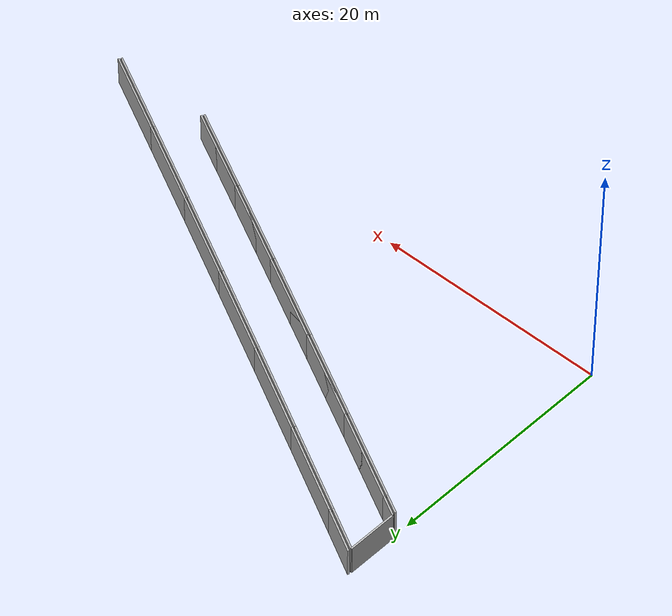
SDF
<?xml version="1.0" ?>
<sdf version="1.6">
  <model name="sps_0012">
    <pose frame="">0 0 0 0 -0 0</pose>
    <static>1</static>
    <self_collide>0</self_collide>
    <allow_auto_disable>0</allow_auto_disable>
    <link name="Wall4283">
      <kinematic>0</kinematic>
      <gravity>1</gravity>
      <self_collide>0</self_collide>
      <collision name="collision">
        <geometry>
          <box>
            <size>4.25247 0.15 2.5</size>
          </box>
        </geometry>
        <pose frame="">0 0 0 0 -0 0</pose>
      </collision>
      <visual name="visual">
        <geometry>
          <box>
            <size>4.25247 0.15 2.5</size>
          </box>
        </geometry>
        <pose frame="">0 0 0 0 -0 0</pose>
        <cast_shadows>1</cast_shadows>
        <transparency>0.0</transparency>
      </visual>
      <pose frame="">0 23.6501 1.25 0 -0 1.5708</pose>
    </link>
    <link name="Wall4284">
      <kinematic>0</kinematic>
      <gravity>1</gravity>
      <self_collide>0</self_collide>
      <collision name="collision">
        <geometry>
          <box>
            <size>3.90759 0.15 2.5</size>
          </box>
        </geometry>
        <pose frame="">0 0 0 0 -0 0</pose>
      </collision>
      <visual name="visual">
        <geometry>
          <box>
            <size>3.90759 0.15 2.5</size>
          </box>
        </geometry>
        <pose frame="">0 0 0 0 -0 0</pose>
        <cast_shadows>1</cast_shadows>
        <transparency>0.0</transparency>
      </visual>
      <pose frame="">1.72703 24.8627 1.25 0 0 -0.486583</pose>
    </link>
    <link name="Wall4285">
      <kinematic>0</kinematic>
      <gravity>1</gravity>
      <self_collide>0</self_collide>
      <collision name="collision">
        <geometry>
          <box>
            <size>8.25159 0.15 2.5</size>
          </box>
        </geometry>
        <pose frame="">0 0 0 0 -0 0</pose>
      </collision>
      <visual name="visual">
        <geometry>
          <box>
            <size>8.25159 0.15 2.5</size>
          </box>
        </geometry>
        <pose frame="">0 0 0 0 -0 0</pose>
        <cast_shadows>1</cast_shadows>
        <transparency>0.0</transparency>
      </visual>
      <pose frame="">7.10555 22.0285 1.25 0 0 -0.484218</pose>
    </link>
    <link name="Wall4286">
      <kinematic>0</kinematic>
      <gravity>1</gravity>
      <self_collide>0</self_collide>
      <collision name="collision">
        <geometry>
          <box>
            <size>8.25156 0.15 2.5</size>
          </box>
        </geometry>
        <pose frame="">0 0 0 0 -0 0</pose>
      </collision>
      <visual name="visual">
        <geometry>
          <box>
            <size>8.25156 0.15 2.5</size>
          </box>
        </geometry>
        <pose frame="">0 0 0 0 -0 0</pose>
        <cast_shadows>1</cast_shadows>
        <transparency>0.0</transparency>
      </visual>
      <pose frame="">14.413 18.1959 1.25 0 0 -0.481856</pose>
    </link>
    <link name="Wall4287">
      <kinematic>0</kinematic>
      <gravity>1</gravity>
      <self_collide>0</self_collide>
      <collision name="collision">
        <geometry>
          <box>
            <size>8.25181 0.15 2.5</size>
          </box>
        </geometry>
        <pose frame="">0 0 0 0 -0 0</pose>
      </collision>
      <visual name="visual">
        <geometry>
          <box>
            <size>8.25181 0.15 2.5</size>
          </box>
        </geometry>
        <pose frame="">0 0 0 0 -0 0</pose>
        <cast_shadows>1</cast_shadows>
        <transparency>0.0</transparency>
      </visual>
      <pose frame="">21.7297 14.3805 1.25 0 0 -0.479496</pose>
    </link>
    <link name="Wall4288">
      <kinematic>0</kinematic>
      <gravity>1</gravity>
      <self_collide>0</self_collide>
      <collision name="collision">
        <geometry>
          <box>
            <size>8.25143 0.15 2.5</size>
          </box>
        </geometry>
        <pose frame="">0 0 0 0 -0 0</pose>
      </collision>
      <visual name="visual">
        <geometry>
          <box>
            <size>8.25143 0.15 2.5</size>
          </box>
        </geometry>
        <pose frame="">0 0 0 0 -0 0</pose>
        <cast_shadows>1</cast_shadows>
        <transparency>0.0</transparency>
      </visual>
      <pose frame="">29.0553 10.5825 1.25 0 0 -0.477112</pose>
    </link>
    <link name="Wall4289">
      <kinematic>0</kinematic>
      <gravity>1</gravity>
      <self_collide>0</self_collide>
      <collision name="collision">
        <geometry>
          <box>
            <size>8.25158 0.15 2.5</size>
          </box>
        </geometry>
        <pose frame="">0 0 0 0 -0 0</pose>
      </collision>
      <visual name="visual">
        <geometry>
          <box>
            <size>8.25158 0.15 2.5</size>
          </box>
        </geometry>
        <pose frame="">0 0 0 0 -0 0</pose>
        <cast_shadows>1</cast_shadows>
        <transparency>0.0</transparency>
      </visual>
      <pose frame="">36.3897 6.80189 1.25 0 0 -0.474756</pose>
    </link>
    <link name="Wall4290">
      <kinematic>0</kinematic>
      <gravity>1</gravity>
      <self_collide>0</self_collide>
      <collision name="collision">
        <geometry>
          <box>
            <size>8.25171 0.15 2.5</size>
          </box>
        </geometry>
        <pose frame="">0 0 0 0 -0 0</pose>
      </collision>
      <visual name="visual">
        <geometry>
          <box>
            <size>8.25171 0.15 2.5</size>
          </box>
        </geometry>
        <pose frame="">0 0 0 0 -0 0</pose>
        <cast_shadows>1</cast_shadows>
        <transparency>0.0</transparency>
      </visual>
      <pose frame="">43.7332 3.03859 1.25 0 0 -0.472387</pose>
    </link>
    <link name="Wall4353">
      <kinematic>0</kinematic>
      <gravity>1</gravity>
      <self_collide>0</self_collide>
      <collision name="collision">
        <geometry>
          <box>
            <size>8.26111 0.15 2.5</size>
          </box>
        </geometry>
        <pose frame="">0 0 0 0 -0 0</pose>
      </collision>
      <visual name="visual">
        <geometry>
          <box>
            <size>8.26111 0.15 2.5</size>
          </box>
        </geometry>
        <pose frame="">0 0 0 0 -0 0</pose>
        <cast_shadows>1</cast_shadows>
        <transparency>0.0</transparency>
      </visual>
      <pose frame="">34.6303 3.4799 1.25 0 -0 2.66682</pose>
    </link>
    <link name="Wall4354">
      <kinematic>0</kinematic>
      <gravity>1</gravity>
      <self_collide>0</self_collide>
      <collision name="collision">
        <geometry>
          <box>
            <size>8.26102 0.15 2.5</size>
          </box>
        </geometry>
        <pose frame="">0 0 0 0 -0 0</pose>
      </collision>
      <visual name="visual">
        <geometry>
          <box>
            <size>8.26102 0.15 2.5</size>
          </box>
        </geometry>
        <pose frame="">0 0 0 0 -0 0</pose>
        <cast_shadows>1</cast_shadows>
        <transparency>0.0</transparency>
      </visual>
      <pose frame="">27.2874 7.265 1.25 0 -0 2.66446</pose>
    </link>
    <link name="Wall4355">
      <kinematic>0</kinematic>
      <gravity>1</gravity>
      <self_collide>0</self_collide>
      <collision name="collision">
        <geometry>
          <box>
            <size>8.261 0.15 2.5</size>
          </box>
        </geometry>
        <pose frame="">0 0 0 0 -0 0</pose>
      </collision>
      <visual name="visual">
        <geometry>
          <box>
            <size>8.261 0.15 2.5</size>
          </box>
        </geometry>
        <pose frame="">0 0 0 0 -0 0</pose>
        <cast_shadows>1</cast_shadows>
        <transparency>0.0</transparency>
      </visual>
      <pose frame="">19.9535 11.0674 1.25 0 -0 2.6621</pose>
    </link>
    <link name="Wall4356">
      <kinematic>0</kinematic>
      <gravity>1</gravity>
      <self_collide>0</self_collide>
      <collision name="collision">
        <geometry>
          <box>
            <size>8.26085 0.15 2.5</size>
          </box>
        </geometry>
        <pose frame="">0 0 0 0 -0 0</pose>
      </collision>
      <visual name="visual">
        <geometry>
          <box>
            <size>8.26085 0.15 2.5</size>
          </box>
        </geometry>
        <pose frame="">0 0 0 0 -0 0</pose>
        <cast_shadows>1</cast_shadows>
        <transparency>0.0</transparency>
      </visual>
      <pose frame="">12.6287 14.8871 1.25 0 -0 2.65972</pose>
    </link>
    <link name="Wall4357">
      <kinematic>0</kinematic>
      <gravity>1</gravity>
      <self_collide>0</self_collide>
      <collision name="collision">
        <geometry>
          <box>
            <size>8.26117 0.15 2.5</size>
          </box>
        </geometry>
        <pose frame="">0 0 0 0 -0 0</pose>
      </collision>
      <visual name="visual">
        <geometry>
          <box>
            <size>8.26117 0.15 2.5</size>
          </box>
        </geometry>
        <pose frame="">0 0 0 0 -0 0</pose>
        <cast_shadows>1</cast_shadows>
        <transparency>0.0</transparency>
      </visual>
      <pose frame="">5.31295 18.7242 1.25 0 -0 2.65736</pose>
    </link>
    <link name="Wall18031">
      <kinematic>0</kinematic>
      <gravity>1</gravity>
      <self_collide>0</self_collide>
      <collision name="collision">
        <geometry>
          <box>
            <size>4.04263 0.15 2.5</size>
          </box>
        </geometry>
        <pose frame="">0 0 0 0 -0 0</pose>
      </collision>
      <visual name="visual">
        <geometry>
          <box>
            <size>4.04263 0.15 2.5</size>
          </box>
        </geometry>
        <pose frame="">0 0 0 0 -0 0</pose>
        <cast_shadows>1</cast_shadows>
        <transparency>0.0</transparency>
      </visual>
      <pose frame="">1.78672 25.1139 1.25 0 0 -0.486572</pose>
    </link>
    <link name="Wall18032">
      <kinematic>0</kinematic>
      <gravity>1</gravity>
      <self_collide>0</self_collide>
      <collision name="collision">
        <geometry>
          <box>
            <size>8.25106 0.15 2.5</size>
          </box>
        </geometry>
        <pose frame="">0 0 0 0 -0 0</pose>
      </collision>
      <visual name="visual">
        <geometry>
          <box>
            <size>8.25106 0.15 2.5</size>
          </box>
        </geometry>
        <pose frame="">0 0 0 0 -0 0</pose>
        <cast_shadows>1</cast_shadows>
        <transparency>0.0</transparency>
      </visual>
      <pose frame="">7.22475 22.2483 1.25 0 0 -0.484193</pose>
    </link>
    <link name="Wall18033">
      <kinematic>0</kinematic>
      <gravity>1</gravity>
      <self_collide>0</self_collide>
      <collision name="collision">
        <geometry>
          <box>
            <size>8.25085 0.15 2.5</size>
          </box>
        </geometry>
        <pose frame="">0 0 0 0 -0 0</pose>
      </collision>
      <visual name="visual">
        <geometry>
          <box>
            <size>8.25085 0.15 2.5</size>
          </box>
        </geometry>
        <pose frame="">0 0 0 0 -0 0</pose>
        <cast_shadows>1</cast_shadows>
        <transparency>0.0</transparency>
      </visual>
      <pose frame="">14.5318 18.4161 1.25 0 0 -0.481851</pose>
    </link>
    <link name="Wall18034">
      <kinematic>0</kinematic>
      <gravity>1</gravity>
      <self_collide>0</self_collide>
      <collision name="collision">
        <geometry>
          <box>
            <size>8.25107 0.15 2.5</size>
          </box>
        </geometry>
        <pose frame="">0 0 0 0 -0 0</pose>
      </collision>
      <visual name="visual">
        <geometry>
          <box>
            <size>8.25107 0.15 2.5</size>
          </box>
        </geometry>
        <pose frame="">0 0 0 0 -0 0</pose>
        <cast_shadows>1</cast_shadows>
        <transparency>0.0</transparency>
      </visual>
      <pose frame="">21.8478 14.6011 1.25 0 0 -0.479484</pose>
    </link>
    <link name="Wall18035">
      <kinematic>0</kinematic>
      <gravity>1</gravity>
      <self_collide>0</self_collide>
      <collision name="collision">
        <geometry>
          <box>
            <size>8.25095 0.15 2.5</size>
          </box>
        </geometry>
        <pose frame="">0 0 0 0 -0 0</pose>
      </collision>
      <visual name="visual">
        <geometry>
          <box>
            <size>8.25095 0.15 2.5</size>
          </box>
        </geometry>
        <pose frame="">0 0 0 0 -0 0</pose>
        <cast_shadows>1</cast_shadows>
        <transparency>0.0</transparency>
      </visual>
      <pose frame="">29.1728 10.8033 1.25 0 0 -0.477142</pose>
    </link>
    <link name="Wall18036">
      <kinematic>0</kinematic>
      <gravity>1</gravity>
      <self_collide>0</self_collide>
      <collision name="collision">
        <geometry>
          <box>
            <size>8.25103 0.15 2.5</size>
          </box>
        </geometry>
        <pose frame="">0 0 0 0 -0 0</pose>
      </collision>
      <visual name="visual">
        <geometry>
          <box>
            <size>8.25103 0.15 2.5</size>
          </box>
        </geometry>
        <pose frame="">0 0 0 0 -0 0</pose>
        <cast_shadows>1</cast_shadows>
        <transparency>0.0</transparency>
      </visual>
      <pose frame="">36.5068 7.0229 1.25 0 0 -0.47474</pose>
    </link>
    <link name="Wall18037">
      <kinematic>0</kinematic>
      <gravity>1</gravity>
      <self_collide>0</self_collide>
      <collision name="collision">
        <geometry>
          <box>
            <size>8.25106 0.15 2.5</size>
          </box>
        </geometry>
        <pose frame="">0 0 0 0 -0 0</pose>
      </collision>
      <visual name="visual">
        <geometry>
          <box>
            <size>8.25106 0.15 2.5</size>
          </box>
        </geometry>
        <pose frame="">0 0 0 0 -0 0</pose>
        <cast_shadows>1</cast_shadows>
        <transparency>0.0</transparency>
      </visual>
      <pose frame="">43.8498 3.2599 1.25 0 0 -0.472394</pose>
    </link>
    <link name="Wall37619">
      <kinematic>0</kinematic>
      <gravity>1</gravity>
      <self_collide>0</self_collide>
      <collision name="collision">
        <geometry>
          <box>
            <size>3.90759 0.15 2.5</size>
          </box>
        </geometry>
        <pose frame="">0 0 0 0 -0 0</pose>
      </collision>
      <visual name="visual">
        <geometry>
          <box>
            <size>3.90759 0.15 2.5</size>
          </box>
        </geometry>
        <pose frame="">0 0 0 0 -0 0</pose>
        <cast_shadows>1</cast_shadows>
        <transparency>0.0</transparency>
      </visual>
      <pose frame="">1.72703 24.8627 1.25 0 0 -0.486583</pose>
    </link>
    <link name="Wall37620">
      <kinematic>0</kinematic>
      <gravity>1</gravity>
      <self_collide>0</self_collide>
      <collision name="collision">
        <geometry>
          <box>
            <size>8.25159 0.15 2.5</size>
          </box>
        </geometry>
        <pose frame="">0 0 0 0 -0 0</pose>
      </collision>
      <visual name="visual">
        <geometry>
          <box>
            <size>8.25159 0.15 2.5</size>
          </box>
        </geometry>
        <pose frame="">0 0 0 0 -0 0</pose>
        <cast_shadows>1</cast_shadows>
        <transparency>0.0</transparency>
      </visual>
      <pose frame="">7.10555 22.0285 1.25 0 0 -0.484218</pose>
    </link>
    <link name="Wall37621">
      <kinematic>0</kinematic>
      <gravity>1</gravity>
      <self_collide>0</self_collide>
      <collision name="collision">
        <geometry>
          <box>
            <size>8.25156 0.15 2.5</size>
          </box>
        </geometry>
        <pose frame="">0 0 0 0 -0 0</pose>
      </collision>
      <visual name="visual">
        <geometry>
          <box>
            <size>8.25156 0.15 2.5</size>
          </box>
        </geometry>
        <pose frame="">0 0 0 0 -0 0</pose>
        <cast_shadows>1</cast_shadows>
        <transparency>0.0</transparency>
      </visual>
      <pose frame="">14.413 18.1959 1.25 0 0 -0.481856</pose>
    </link>
    <link name="Wall37622">
      <kinematic>0</kinematic>
      <gravity>1</gravity>
      <self_collide>0</self_collide>
      <collision name="collision">
        <geometry>
          <box>
            <size>8.25181 0.15 2.5</size>
          </box>
        </geometry>
        <pose frame="">0 0 0 0 -0 0</pose>
      </collision>
      <visual name="visual">
        <geometry>
          <box>
            <size>8.25181 0.15 2.5</size>
          </box>
        </geometry>
        <pose frame="">0 0 0 0 -0 0</pose>
        <cast_shadows>1</cast_shadows>
        <transparency>0.0</transparency>
      </visual>
      <pose frame="">21.7297 14.3805 1.25 0 0 -0.479496</pose>
    </link>
    <link name="Wall37623">
      <kinematic>0</kinematic>
      <gravity>1</gravity>
      <self_collide>0</self_collide>
      <collision name="collision">
        <geometry>
          <box>
            <size>8.25143 0.15 2.5</size>
          </box>
        </geometry>
        <pose frame="">0 0 0 0 -0 0</pose>
      </collision>
      <visual name="visual">
        <geometry>
          <box>
            <size>8.25143 0.15 2.5</size>
          </box>
        </geometry>
        <pose frame="">0 0 0 0 -0 0</pose>
        <cast_shadows>1</cast_shadows>
        <transparency>0.0</transparency>
      </visual>
      <pose frame="">29.0553 10.5825 1.25 0 0 -0.477112</pose>
    </link>
    <link name="Wall37624">
      <kinematic>0</kinematic>
      <gravity>1</gravity>
      <self_collide>0</self_collide>
      <collision name="collision">
        <geometry>
          <box>
            <size>8.25158 0.15 2.5</size>
          </box>
        </geometry>
        <pose frame="">0 0 0 0 -0 0</pose>
      </collision>
      <visual name="visual">
        <geometry>
          <box>
            <size>8.25158 0.15 2.5</size>
          </box>
        </geometry>
        <pose frame="">0 0 0 0 -0 0</pose>
        <cast_shadows>1</cast_shadows>
        <transparency>0.0</transparency>
      </visual>
      <pose frame="">36.3897 6.80189 1.25 0 0 -0.474756</pose>
    </link>
    <link name="Wall37625">
      <kinematic>0</kinematic>
      <gravity>1</gravity>
      <self_collide>0</self_collide>
      <collision name="collision">
        <geometry>
          <box>
            <size>8.25171 0.15 2.5</size>
          </box>
        </geometry>
        <pose frame="">0 0 0 0 -0 0</pose>
      </collision>
      <visual name="visual">
        <geometry>
          <box>
            <size>8.25171 0.15 2.5</size>
          </box>
        </geometry>
        <pose frame="">0 0 0 0 -0 0</pose>
        <cast_shadows>1</cast_shadows>
        <transparency>0.0</transparency>
      </visual>
      <pose frame="">43.7332 3.03859 1.25 0 0 -0.472387</pose>
    </link>
    <link name="Wall37839">
      <kinematic>0</kinematic>
      <gravity>1</gravity>
      <self_collide>0</self_collide>
      <collision name="collision">
        <geometry>
          <box>
            <size>1.73959 0.15 2.5</size>
          </box>
        </geometry>
        <pose frame="">0 0 0 0 -0 0</pose>
      </collision>
      <visual name="visual">
        <geometry>
          <box>
            <size>1.73959 0.15 2.5</size>
          </box>
        </geometry>
        <pose frame="">0 0 0 0 -0 0</pose>
        <cast_shadows>1</cast_shadows>
        <transparency>0.0</transparency>
      </visual>
      <pose frame="">0.76884 20.8346 1.25 0 0 -0.486592</pose>
    </link>
    <link name="Wall37840">
      <kinematic>0</kinematic>
      <gravity>1</gravity>
      <self_collide>0</self_collide>
      <collision name="collision">
        <geometry>
          <box>
            <size>8.26183 0.15 2.5</size>
          </box>
        </geometry>
        <pose frame="">0 0 0 0 -0 0</pose>
      </collision>
      <visual name="visual">
        <geometry>
          <box>
            <size>8.26183 0.15 2.5</size>
          </box>
        </geometry>
        <pose frame="">0 0 0 0 -0 0</pose>
        <cast_shadows>1</cast_shadows>
        <transparency>0.0</transparency>
      </visual>
      <pose frame="">5.19366 18.5048 1.25 0 0 -0.484242</pose>
    </link>
    <link name="Wall37841">
      <kinematic>0</kinematic>
      <gravity>1</gravity>
      <self_collide>0</self_collide>
      <collision name="collision">
        <geometry>
          <box>
            <size>8.26159 0.15 2.5</size>
          </box>
        </geometry>
        <pose frame="">0 0 0 0 -0 0</pose>
      </collision>
      <visual name="visual">
        <geometry>
          <box>
            <size>8.26159 0.15 2.5</size>
          </box>
        </geometry>
        <pose frame="">0 0 0 0 -0 0</pose>
        <cast_shadows>1</cast_shadows>
        <transparency>0.0</transparency>
      </visual>
      <pose frame="">12.51 14.6673 1.25 0 0 -0.48188</pose>
    </link>
    <link name="Wall37842">
      <kinematic>0</kinematic>
      <gravity>1</gravity>
      <self_collide>0</self_collide>
      <collision name="collision">
        <geometry>
          <box>
            <size>8.26171 0.15 2.5</size>
          </box>
        </geometry>
        <pose frame="">0 0 0 0 -0 0</pose>
      </collision>
      <visual name="visual">
        <geometry>
          <box>
            <size>8.26171 0.15 2.5</size>
          </box>
        </geometry>
        <pose frame="">0 0 0 0 -0 0</pose>
        <cast_shadows>1</cast_shadows>
        <transparency>0.0</transparency>
      </visual>
      <pose frame="">19.8354 10.8472 1.25 0 0 -0.479497</pose>
    </link>
    <link name="Wall37843">
      <kinematic>0</kinematic>
      <gravity>1</gravity>
      <self_collide>0</self_collide>
      <collision name="collision">
        <geometry>
          <box>
            <size>8.26176 0.15 2.5</size>
          </box>
        </geometry>
        <pose frame="">0 0 0 0 -0 0</pose>
      </collision>
      <visual name="visual">
        <geometry>
          <box>
            <size>8.26176 0.15 2.5</size>
          </box>
        </geometry>
        <pose frame="">0 0 0 0 -0 0</pose>
        <cast_shadows>1</cast_shadows>
        <transparency>0.0</transparency>
      </visual>
      <pose frame="">27.1699 7.04439 1.25 0 0 -0.477148</pose>
    </link>
    <link name="Wall37844">
      <kinematic>0</kinematic>
      <gravity>1</gravity>
      <self_collide>0</self_collide>
      <collision name="collision">
        <geometry>
          <box>
            <size>8.26173 0.15 2.5</size>
          </box>
        </geometry>
        <pose frame="">0 0 0 0 -0 0</pose>
      </collision>
      <visual name="visual">
        <geometry>
          <box>
            <size>8.26173 0.15 2.5</size>
          </box>
        </geometry>
        <pose frame="">0 0 0 0 -0 0</pose>
        <cast_shadows>1</cast_shadows>
        <transparency>0.0</transparency>
      </visual>
      <pose frame="">34.5134 3.25899 1.25 0 0 -0.474755</pose>
    </link>
    <link name="Wall37922">
      <kinematic>0</kinematic>
      <gravity>1</gravity>
      <self_collide>0</self_collide>
      <collision name="collision">
        <geometry>
          <box>
            <size>1.87488 0.15 2.5</size>
          </box>
        </geometry>
        <pose frame="">0 0 0 0 -0 0</pose>
      </collision>
      <visual name="visual">
        <geometry>
          <box>
            <size>1.87488 0.15 2.5</size>
          </box>
        </geometry>
        <pose frame="">0 0 0 0 -0 0</pose>
        <cast_shadows>1</cast_shadows>
        <transparency>0.0</transparency>
      </visual>
      <pose frame="">0.828624 21.0855 1.25 0 0 -0.48661</pose>
    </link>
    <link name="Wall37923">
      <kinematic>0</kinematic>
      <gravity>1</gravity>
      <self_collide>0</self_collide>
      <collision name="collision">
        <geometry>
          <box>
            <size>8.26117 0.15 2.5</size>
          </box>
        </geometry>
        <pose frame="">0 0 0 0 -0 0</pose>
      </collision>
      <visual name="visual">
        <geometry>
          <box>
            <size>8.26117 0.15 2.5</size>
          </box>
        </geometry>
        <pose frame="">0 0 0 0 -0 0</pose>
        <cast_shadows>1</cast_shadows>
        <transparency>0.0</transparency>
      </visual>
      <pose frame="">5.31295 18.7242 1.25 0 0 -0.484234</pose>
    </link>
    <link name="Wall37924">
      <kinematic>0</kinematic>
      <gravity>1</gravity>
      <self_collide>0</self_collide>
      <collision name="collision">
        <geometry>
          <box>
            <size>8.26085 0.15 2.5</size>
          </box>
        </geometry>
        <pose frame="">0 0 0 0 -0 0</pose>
      </collision>
      <visual name="visual">
        <geometry>
          <box>
            <size>8.26085 0.15 2.5</size>
          </box>
        </geometry>
        <pose frame="">0 0 0 0 -0 0</pose>
        <cast_shadows>1</cast_shadows>
        <transparency>0.0</transparency>
      </visual>
      <pose frame="">12.6287 14.8871 1.25 0 0 -0.481868</pose>
    </link>
    <link name="Wall37925">
      <kinematic>0</kinematic>
      <gravity>1</gravity>
      <self_collide>0</self_collide>
      <collision name="collision">
        <geometry>
          <box>
            <size>8.261 0.15 2.5</size>
          </box>
        </geometry>
        <pose frame="">0 0 0 0 -0 0</pose>
      </collision>
      <visual name="visual">
        <geometry>
          <box>
            <size>8.261 0.15 2.5</size>
          </box>
        </geometry>
        <pose frame="">0 0 0 0 -0 0</pose>
        <cast_shadows>1</cast_shadows>
        <transparency>0.0</transparency>
      </visual>
      <pose frame="">19.9535 11.0674 1.25 0 0 -0.479492</pose>
    </link>
    <link name="Wall37926">
      <kinematic>0</kinematic>
      <gravity>1</gravity>
      <self_collide>0</self_collide>
      <collision name="collision">
        <geometry>
          <box>
            <size>8.26102 0.15 2.5</size>
          </box>
        </geometry>
        <pose frame="">0 0 0 0 -0 0</pose>
      </collision>
      <visual name="visual">
        <geometry>
          <box>
            <size>8.26102 0.15 2.5</size>
          </box>
        </geometry>
        <pose frame="">0 0 0 0 -0 0</pose>
        <cast_shadows>1</cast_shadows>
        <transparency>0.0</transparency>
      </visual>
      <pose frame="">27.2874 7.265 1.25 0 0 -0.477136</pose>
    </link>
    <link name="Wall37927">
      <kinematic>0</kinematic>
      <gravity>1</gravity>
      <self_collide>0</self_collide>
      <collision name="collision">
        <geometry>
          <box>
            <size>8.26111 0.15 2.5</size>
          </box>
        </geometry>
        <pose frame="">0 0 0 0 -0 0</pose>
      </collision>
      <visual name="visual">
        <geometry>
          <box>
            <size>8.26111 0.15 2.5</size>
          </box>
        </geometry>
        <pose frame="">0 0 0 0 -0 0</pose>
        <cast_shadows>1</cast_shadows>
        <transparency>0.0</transparency>
      </visual>
      <pose frame="">34.6303 3.4799 1.25 0 0 -0.47477</pose>
    </link>
  </model>
</sdf>
